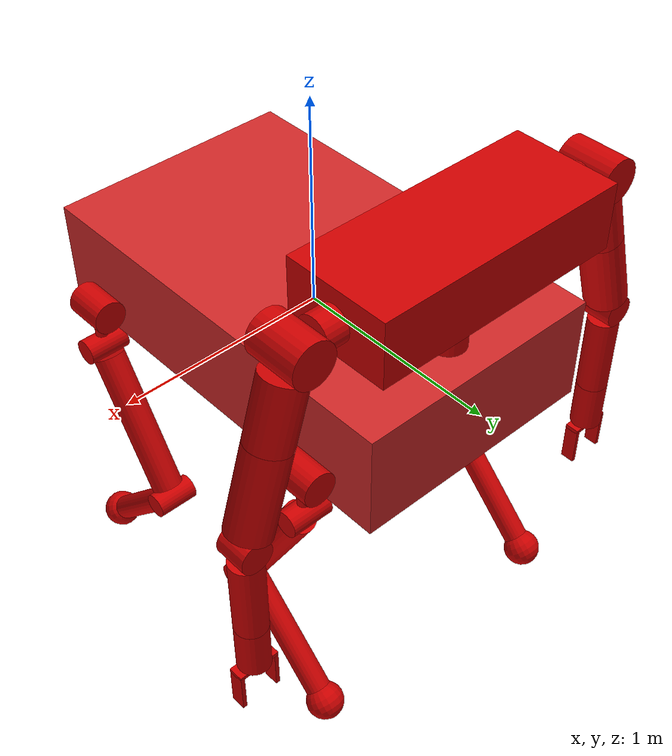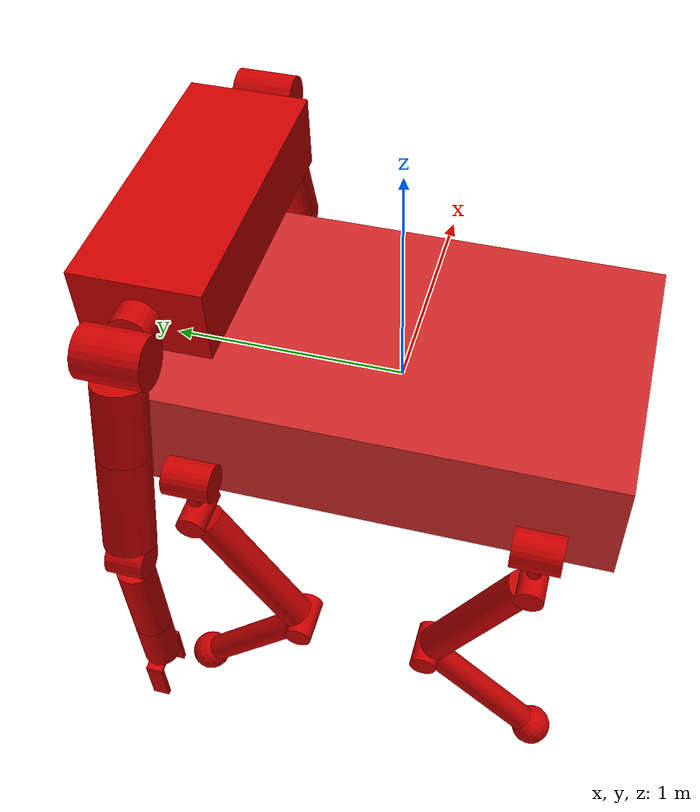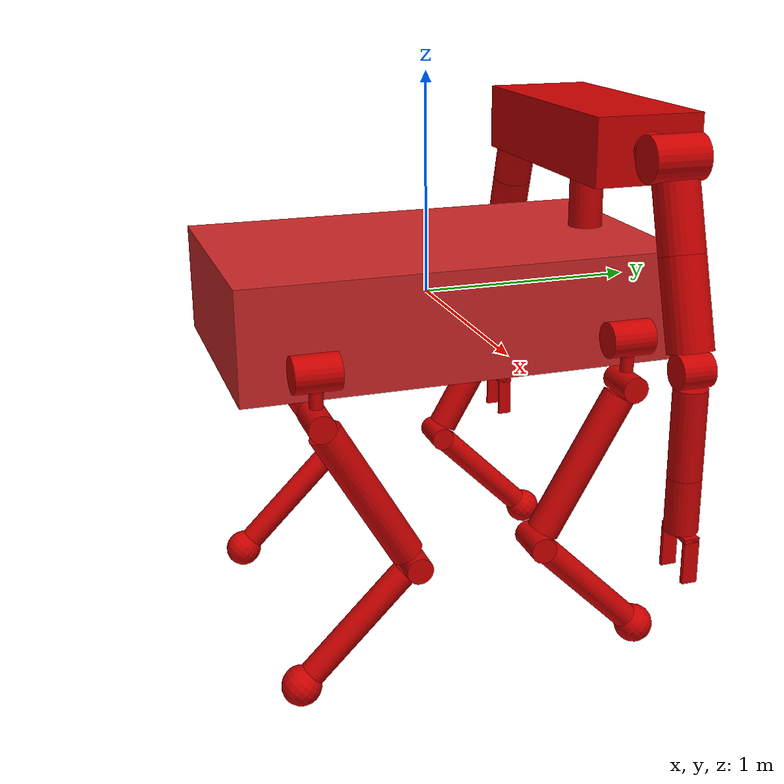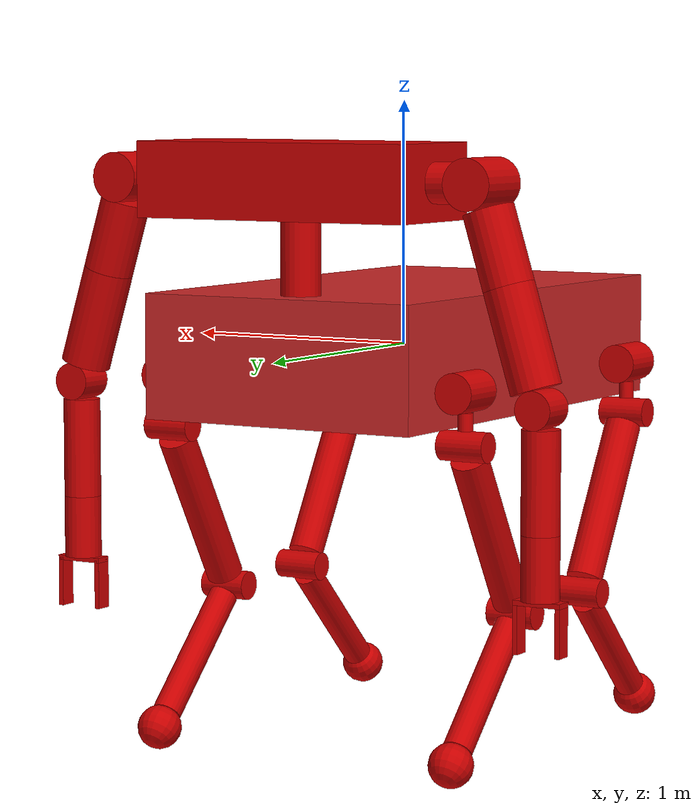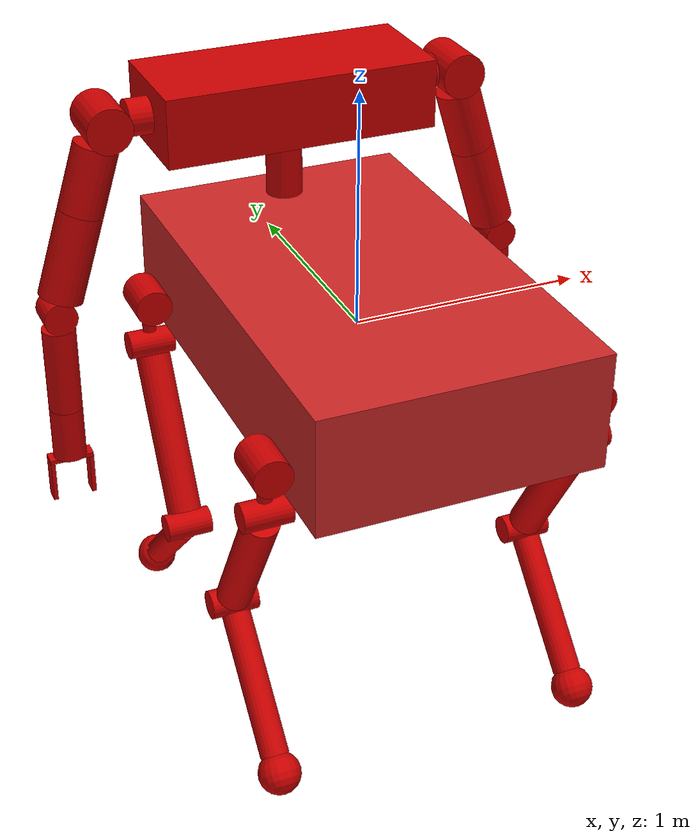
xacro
<?xml version="1.0"?>

<robot name="quadruped" xmlns:xacro="http://ros.org/wiki/xacro">

	<!-- This argument allows us to load joint sensors that measure the internal wrenches -->
	<xacro:arg name="load_force_sensors" default="false"/>

	<!-- The following included files set up definitions of parts of the robot body -->
	<xacro:include filename="$(find quadruped_description)/urdfs/common.xacro"/>
	<!-- quadruped trunk -->
	<xacro:include filename="$(find quadruped_description)/urdfs/trunk/trunk_model.urdf.xacro"/>
	<!-- quadruped legs -->
	<xacro:include filename="$(find quadruped_description)/urdfs/leg/leg.urdf.xacro"/>
	<!-- quadruped torso -->
	<xacro:include filename="$(find quadruped_description)/urdfs/torso/torso.urdf.xacro"/>
	<!-- quadruped arm -->
	<xacro:include filename="$(find quadruped_description)/urdfs/arm/arm.urdf.xacro"/>

	<!-- Now we can start using the macros included above to define the actual HyQ -->

	<!-- body -->
	<!-- trunk -->
	<xacro:quad_trunk>
		<!--origin xyz="-0.443 -0.191 -0.276" rpy="0 0 0"/-->
	</xacro:quad_trunk>

	<!-- legs -->
	<xacro:leg prefix="forward_right" reflect_lateral="1" reflect_fb="1" left_right="1" front_back="1" load_force_sensors="$(arg load_force_sensors)">       <!-- forward right leg   -->
  </xacro:leg>
	<xacro:leg prefix="forward_left" reflect_lateral="-1" reflect_fb="1" left_right="0" front_back="1" load_force_sensors="$(arg load_force_sensors)">     <!--  forward left leg  -->
  </xacro:leg>
	<xacro:leg prefix="backward_right" reflect_lateral="1" reflect_fb="-1" left_right="1" front_back="-1" load_force_sensors="$(arg load_force_sensors)">     <!-- backward right leg  -->
  </xacro:leg>
	<xacro:leg prefix="backward_left" reflect_lateral="-1" reflect_fb="-1" left_right="0" front_back="-1" load_force_sensors="$(arg load_force_sensors)">   <!--  backward left leg -->
  </xacro:leg>

	<!-- torso -->
	<xacro:quad_torso>
	</xacro:quad_torso>

	<!-- arm -->
	<xacro:arm prefix="left" reflect="-1">
	</xacro:arm>
  <xacro:arm prefix="right" reflect="1">
	</xacro:arm>

</robot>

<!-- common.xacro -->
<robot xmlns:xacro="http://ros.org/wiki/xacro">

<xacro:property name="deg_to_rad" value="0.01745329251994329577"/>

<!-- Colour -->
<material name="black">
    <color rgba="0.0 0.0 0.0 1.0"/>
</material>
<material name="red">
    <color rgba="0.8 0.0 0.0 1.0"/>
</material>
<material name="white">
    <color rgba="1.0 1.0 1.0 1.0"/>
</material>

<!-- Constants -->
<xacro:property name="M_SCALE" value="0.001 0.001 0.001"/>
<xacro:property name="PI" value="3.14159265359"/>
<xacro:property name="PI_2" value="1.57079632679"/>
<xacro:property name="joint_limit_effort" value="300"/>
<xacro:property name="joint_velocity" value="0.1"/>

<!--/////////////////////Lower body parameters/////////////////////////////-->
<!-- pelvis -->
<xacro:property name="pelvis_l" value="2.0"/> <!-- pelvis length-->
<xacro:property name="pelvis_w" value="1.2"/> <!-- pelvis width-->
<xacro:property name="pelvis_h" value="0.5"/> <!-- pelvis height-->

<!-- thigh_roll_cylinder -->
<xacro:property name="thigh_r_l" value="0.2"/> <!-- length of the cylinder-->
<xacro:property name="thigh_r_r" value="0.08"/> <!-- radius of the cylinder-->

<!-- thigh_bwn_cylinder -->
<xacro:property name="thigh_bwn_l" value="0.07"/> <!-- length of the cylinder-->
<xacro:property name="thigh_bwn_r" value="0.03"/> <!-- radius of the cylinder-->

<!-- thigh_pitch_cylinder -->
<xacro:property name="thigh_p_l" value="0.2"/> <!-- length of the cylinder-->
<xacro:property name="thigh_p_r" value="0.06"/> <!-- radius of the cylinder-->

<!--- upper_leg (cylinder)-->
<xacro:property name="upper_leg_l" value="0.7"/> <!--length of the leg above the knee-->
<xacro:property name="upper_leg_r" value="0.075"/> <!--radius of the leg above the knee-->

<!-- knee (cylinder) -->
<xacro:property name="knee_l" value="0.2"/> <!-- knee cylinder length-->
<xacro:property name="knee_r" value="0.06"/> <!-- knee cylinder radius-->

<!-- lower leg (cylinder)-->
<xacro:property name="lower_leg_l" value="0.6"/> <!-- length below knee -->
<xacro:property name="lower_leg_r" value="0.06"/> <!-- radius below the knee -->

<!-- sole_sphere -->
<xacro:property name="sole_r" value="0.09"/>

<!-- lower kinematics -->
<xacro:property name="thigh_roll_min" value="15"/>
<xacro:property name="thigh_roll_max" value="60"/>
<xacro:property name="thigh_pitch_min" value="-60"/>
<xacro:property name="thigh_pitch_max" value="60"/>
<xacro:property name="knee_pitch_min" value="40"/>
<xacro:property name="knee_pitch_max" value="150"/>

<!-- cylinder of the lower limbs-->
<xacro:property name="cylinder_h" value="0.06"/>
<xacro:property name="cylinder_r" value="0.02"/>
<xacro:property name="cylinder_m" value="0.1"/>

<!-- foot -->
<xacro:property name="foot_m" value="0.1"/>
<xacro:property name="foot_r" value="0.02"/>

<!-- //////////////////////////Upper body parameters///////////////////////-->

<!-- Spine_cylinder-->
<xacro:property name="spine_r" value="0.08"/>
<xacro:property name="spine_l" value="0.3"/>

<!-- Shoulder  -->
<xacro:property name="shoulder_l" value="0.5"/>              <!-- the lenght width and height of the shoulder are taken wrt the entire robot and not the shoulder box -->
<xacro:property name="shoulder_w" value="1.2"/>
<xacro:property name="shoulder_h" value="0.3"/>

<!-- shoulder_pitch_cylinder -->
<xacro:property name="shoulder_pitch_r" value="0.08"/>
<xacro:property name="shoulder_pitch_l" value="0.1"/>

<!-- shoulder_roll_cylinder -->
<xacro:property name="shoulder_roll_r" value="0.1"/>
<xacro:property name="shoulder_roll_l" value="0.25"/>

<!-- shoulder_bwn_link -->
<xacro:property name="shoulder_bwn_r" value="0.1"/>
<xacro:property name="shoulder_bwn_l" value="0.3"/>

<!-- shoulder_yaw_cylinder -->
<xacro:property name="shoulder_yaw_r" value="0.1"/>
<xacro:property name="shoulder_yaw_l" value="0.4"/>

<!-- elbow -->
<xacro:property name="elbow_r" value="0.075"/>
<xacro:property name="elbow_l" value="0.15"/>

<!-- forearm -->
<xacro:property name="forearm_r" value="0.075"/>
<xacro:property name="forearm_l" value="0.4"/>

<!-- wrist -->
<xacro:property name="wrist_r" value="0.075"/>
<xacro:property name="wrist_l" value="0.25"/>

</robot>

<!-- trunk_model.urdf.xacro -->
<robot xmlns:xacro="http://ros.org/wiki/xacro">

	<!-- Things that are needed only for Gazebo (not the physical robot). These include sensor and controller plugin specifications -->
	<xacro:include filename="$(find quadruped_description)/urdfs/trunk/trunk.gazebo.xacro"/>

	<!-- ================================ Trunk ================================ -->
	<!-- The xacro macro xacro:hyq_base contains: base and trunk -->
	<xacro:macro name="quad_trunk">
		<!-- Floating-base Joint -->
		<joint name="base_footprint_joint" type="floating">
        <origin xyz="0 0 0" rpy="0 0 0" />
        <parent link="base_footprint"/>
        <child link="pelvis" />
      </joint>

		<!-- Links -->
		<!-- Footprint link -->
   <link name="base_footprint">
      <visual>
          <origin xyz="0 0 0" rpy="0 0 0" />
          <geometry>
              <box size="0.001 0.001 0.001" />
          </geometry>
      </visual>
    </link>
		<!-- Trunk link -->
		<link name="pelvis">
			<inertial>
				<mass value="60.96" />
				<origin xyz="0.056 0.0215 0.00358" />
				<inertia ixx="1.572" ixy="0.028" ixz="-0.203"
						iyy="8.502" iyz="-0.004"
						izz="9.195" />
			</inertial>
			<visual>
				<geometry>
					<box size="${pelvis_w} ${pelvis_l} ${pelvis_h}"/>
				</geometry>
				<origin xyz="0 0 0" rpy="0 0 0"/>
				<material name="Red"/>
			</visual>
			<collision>
				<geometry>
					<box size="${pelvis_w} ${pelvis_l} ${pelvis_h}"/>
				</geometry>
			</collision>
		</link>

		<!-- Extensions -->
		<xacro:trunk_gazebo />
	</xacro:macro>

</robot>

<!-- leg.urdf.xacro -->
<robot xmlns:xacro="http://ros.org/wiki/xacro">

	<!-- Things that are needed only for Gazebo (not the physical robot). These include sensor and controller plugin specifications -->
	<xacro:include filename="$(find quadruped_description)/urdfs/leg/leg.transmission.xacro"/>
	<xacro:include filename="$(find quadruped_description)/urdfs/leg/leg.gazebo.xacro"/>

<!-- ================================== Leg ================================== -->
   <xacro:macro name="leg" params="prefix reflect_lateral reflect_fb left_right front_back load_force_sensors">
   <!--Joints-->
   <!-- joint between the thigh_roll_cylinder and pelvic -->
    <joint name="${prefix}_thigh_roll_joint" type="revolute">
      <origin xyz="${reflect_lateral*(pelvis_w/2+thigh_r_r)} ${reflect_fb*(pelvis_l/2-0.3)} -0.1"/>    <!-- 0.3 and 0.1 are the offset provided for the thigh_roll_cylinder from the front and centerline below-->
      <parent link ="pelvis"/>
      <child link="${prefix}_thigh_roll_cylinder"/>
      <axis xyz="0 1 0"/>
      <limit effort="${joint_limit_effort}" velocity="${joint_velocity}"
      lower="${-(1-left_right)*thigh_roll_min*PI/180-left_right*thigh_roll_max*PI/180}"
      upper="${(1-left_right)*thigh_roll_max*PI/180+left_right*thigh_roll_min*PI/180}"/>
      <dynamics damping="0.1" friction="0" />
    </joint>
    <!-- fixed joint between the thigh_roll_cylinder and thigh_bwn_cylinder -->
    <joint name="${prefix}_thigh_bwn_joint" type="fixed">
      <origin xyz="0 0 -${thigh_r_r+thigh_bwn_l/2}"/>
      <parent link="${prefix}_thigh_roll_cylinder"/>
      <child link="${prefix}_thigh_bwn_cylinder"/>
    </joint>
    <!-- the joint which allows the pitch motion of the thigh -->
    <joint name="${prefix}_thigh_pitch_joint" type="revolute">
      <origin xyz="0 0 -${thigh_p_r+thigh_bwn_l/2}" rpy="${-30*front_back*deg_to_rad} 0 0"/>
      <parent link="${prefix}_thigh_bwn_cylinder"/>
      <child link="${prefix}_thigh_pitch_cylinder"/>
      <axis xyz="1 0 0"/>
      <limit effort="${joint_limit_effort}" velocity="${joint_velocity}" lower="${thigh_pitch_min*PI/180}" upper="${thigh_pitch_max*PI/180}"/>
      <dynamics damping="0.1" friction="0" />
    </joint>
    <!-- the permanent joint connecting upper leg and the thigh_pitch_cylinder -->
    <joint name="${prefix}_leg_thigh_joint" type="fixed">
      <origin xyz="0 0 -${thigh_p_r+upper_leg_l/2}"/>
      <parent link="${prefix}_thigh_pitch_cylinder"/>
      <child link="${prefix}_upper_leg"/>
    </joint>
    <!-- knee joint -->
    <joint name="${prefix}_knee_joint" type="revolute">
      <origin xyz="0 0 -${knee_r+upper_leg_l/2}" rpy="${75*front_back*deg_to_rad} 0 0"/>
      <parent link="${prefix}_upper_leg"/>
      <child link="${prefix}_knee_cylinder"/>
      <axis xyz="1 0 0"/>
      <limit effort="${joint_limit_effort}" velocity="${joint_velocity}" lower="${(-(1+front_back)/2*knee_pitch_max-(1-front_back)/2*knee_pitch_min)*PI/180}"
				         upper="${((1+front_back)/2*knee_pitch_min+(1-front_back)/2*knee_pitch_max)*PI/180}"/>
      <dynamics damping="0.1" friction="0" />
    </joint>
    <!-- the permanent joint connecting the knee cylinder with the lower leg -->
    <joint name="${prefix}_knee_fixed_joint" type="fixed">
      <origin xyz="0 0 -${knee_r+lower_leg_l/2}"/>
      <parent link="${prefix}_knee_cylinder"/>
      <child link="${prefix}_lower_leg"/>
    </joint>
    <!-- the permanent joint connecting the sole and lower_leg -->
    <joint name="${prefix}_sole_fixed_joint" type="fixed">
      <origin xyz="0 0 -${sole_r+lower_leg_l/2-0.02}"/>
      <parent link="${prefix}_lower_leg"/>
      <child link="${prefix}_sole_sphere"/>
    </joint>

    <!-- Links -->
    <!--- link which allows the lateral motion of the link -->
    <link name="${prefix}_thigh_roll_cylinder">
			<inertial>
	       <mass value="${cylinder_m}" />
				 <origin xyz="0 0 0"/>
	       <inertia ixx="${0.08333*cylinder_m*cylinder_h*cylinder_h+0.25*cylinder_m*cylinder_r*cylinder_r}" ixy="0" ixz="0"
	           iyy="${0.5*cylinder_m*cylinder_r*cylinder_r}" iyz="0"
	           izz="${0.08333*cylinder_m*cylinder_h*cylinder_h+0.25*cylinder_m*cylinder_r*cylinder_r}" />
	     </inertial>
      <visual>
        <geometry>
          <cylinder radius="${thigh_r_r}" length="${thigh_r_l}"/>
        </geometry>
        <origin xyz="0 0 0" rpy="${PI_2} 0 0"/>
        <material name="red"/>
      </visual>
      <collision>
				<origin xyz="0 0 0" rpy="${PI_2} 0 0"/>
        <geometry>
          <cylinder radius="${thigh_r_r}" length="${thigh_r_l}"/>
        </geometry>
      </collision>
    </link>
    <!--- the link which joints the thigh_roll_cylinder and thigh_pitch_cylinder -->
    <link name="${prefix}_thigh_bwn_cylinder">
			<inertial>
	       <mass value="${cylinder_m}" />
	       <origin xyz="0 0 0"/>
	       <inertia ixx="${0.08333*cylinder_m*cylinder_h*cylinder_h+0.25*cylinder_m*cylinder_r*cylinder_r}" ixy="0" ixz="0"
	           iyy="${0.08333*cylinder_m*cylinder_h*cylinder_h+0.25*cylinder_m*cylinder_r*cylinder_r}" iyz="0"
	           izz="${0.5*cylinder_m*cylinder_r*cylinder_r}" />
	     </inertial>
      <visual>
        <geometry>
          <cylinder radius="${thigh_bwn_r}" length="${thigh_bwn_l}"/>
        </geometry>
        <origin xyz="0 0 0"/>
        <material name="red"/>
      </visual>
      <collision>
        <geometry>
          <cylinder radius="${thigh_bwn_r}" length="${thigh_bwn_l}"/>
        </geometry>
      </collision>
    </link>
    <!-- the link(cylinder) which is attached to the upper_leg -->
    <link name="${prefix}_thigh_pitch_cylinder">
			<inertial>
	       <mass value="${cylinder_m}" />
	       <origin xyz="0 0 0"/>
	       <inertia ixx="${0.5*cylinder_m*cylinder_r*cylinder_r}" ixy="0" ixz="0"
	           iyy="${0.08333*cylinder_m*cylinder_h*cylinder_h+0.25*cylinder_m*cylinder_r*cylinder_r}" iyz="0"
	           izz="${0.08333*cylinder_m*cylinder_h*cylinder_h+0.25*cylinder_m*cylinder_r*cylinder_r}" />
	     </inertial>
      <visual>
        <geometry>
          <cylinder radius="${thigh_p_r}" length="${thigh_p_l}"/>
        </geometry>
        <origin xyz="0 0 0" rpy="0 ${PI_2} 0"/>
        <material name="red"/>
      </visual>
      <collision>
				<origin xyz="0 0 0" rpy="0 ${PI_2} 0"/>
        <geometry>
          <cylinder radius="${thigh_p_r}" length="${thigh_p_l}"/>
        </geometry>
      </collision>
    </link>
    <!-- the upper leg -->
    <link name="${prefix}_upper_leg">
    <inertial>
       <mass value="2.638" />
       <origin xyz="0.150 0.026 0.0" />
       <inertia ixx="0.0036" ixy="-0.003" ixz="0.0001"
           iyy="0.027" iyz="0.00002"
           izz="0.028" />
     </inertial>
      <visual>
        <geometry>
          <cylinder radius="${upper_leg_r}" length="${upper_leg_l}"/>
        </geometry>
        <origin xyz="0 0 0" rpy="0 0 0"/>
        <material name="red"/>
      </visual>
      <collision>
        <geometry>
          <cylinder radius="${upper_leg_r}" length="${upper_leg_l}"/>
        </geometry>
      </collision>
    </link>
    <!-- the link(cylinder) at the knee which connects the upper and lower leg -->
    <link name="${prefix}_knee_cylinder">
			<inertial>
	       <mass value="${cylinder_m}" />
	       <origin xyz="0 0 0"/>
	       <inertia ixx="${0.5*cylinder_m*cylinder_r*cylinder_r}" ixy="0" ixz="0"
	           iyy="${0.08333*cylinder_m*cylinder_h*cylinder_h+0.25*cylinder_m*cylinder_r*cylinder_r}" iyz="0"
	           izz="${0.08333*cylinder_m*cylinder_h*cylinder_h+0.25*cylinder_m*cylinder_r*cylinder_r}" />
	     </inertial>
      <visual>
        <geometry>
          <cylinder radius="${knee_r}" length="${knee_l}"/>
        </geometry>
        <origin xyz="0 0 0" rpy="0 ${PI_2} 0"/>
        <material name="red"/>
      </visual>
      <collision>
				<origin xyz="0 0 0" rpy="0 ${PI_2} 0"/>
        <geometry>
          <cylinder radius="${knee_r}" length="${knee_l}"/>
        </geometry>
      </collision>
    </link>
    <!-- lower leg -->
    <link name="${prefix}_lower_leg">
      <inertial>
       <mass value="0.881" />
       <origin xyz="0.125 0.00004 -0.0001" />
       <inertia ixx="0.0125" ixy="0.00006" ixz="-0.00001"
           iyy="0.01256" iyz="0"
           izz="0.0123" />
     </inertial>
      <visual>
        <geometry>
          <cylinder radius="${lower_leg_r}" length="${lower_leg_l}"/>
        </geometry>
        <origin xyz="0 0 0" rpy="0 0 0"/>
        <material name="red"/>
      </visual>
      <collision>
        <geometry>
          <cylinder radius="${lower_leg_r}" length="${lower_leg_l}"/>
        </geometry>
      </collision>
    </link>
    <!-- the sphere which acts as the sole of the robot -->
    <link name="${prefix}_sole_sphere">
			<inertial>
       <mass value="${foot_m}" />
       <origin xyz="0 0 0"/>
       <inertia ixx="${0.4*foot_m*foot_r*foot_r}" ixy="0" ixz="0"
           iyy="${0.4*foot_m*foot_r*foot_r}" iyz="0"
           izz="${0.4*foot_m*foot_r*foot_r}" />
     </inertial>
      <visual>
        <geometry>
          <sphere radius="${sole_r}"/>
        </geometry>
        <origin xyz="0 0 0" rpy="0 0 0"/>
        <material name="red"/>
      </visual>
      <collision>
        <geometry>
          <sphere radius="${sole_r}"/>
        </geometry>
      </collision>
    </link>

    <!-- Extensions -->
    <xacro:leg_transmission prefix="${prefix}"/>
    <xacro:leg_gazebo prefix="${prefix}" load_force_sensors="${load_force_sensors}"/>
  </xacro:macro>

</robot>

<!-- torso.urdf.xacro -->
<robot xmlns:xacro="http://ros.org/wiki/xacro">

	<!-- ================================ Torso ================================ -->
	<!-- The xacro macro xacro:hyq_base contains: base and trunk -->
	<xacro:macro name="quad_torso">
		<!-- Joints -->
		<joint name="pelvis_shoulder_fixed_joint" type="fixed">
			<origin xyz="0 ${pelvis_l/2-0.2} ${spine_l/2+pelvis_h/2}" />
			<parent link="pelvis"/>
			<child link="spine_cylinder"/>
		</joint>

		<joint name="shoulder_twist" type="fixed">
			<origin xyz="0 0 ${spine_l/2+shoulder_h/2}"/>
			<parent link="spine_cylinder"/>
			<child link="shoulder"/>
			<axis xyz="0 0 1"/>
			<limit effort="${joint_limit_effort}" velocity="${joint_velocity}" lower="-3.14" upper="3.14"/>
		</joint>

		<!-- Links -->
		<link name="spine_cylinder">
			<visual>
				<geometry>
					<cylinder radius="${spine_r}" length="${spine_l}"/>
				</geometry>
				<origin xyz="0 0 0"/>
				<material name="red"/>
			</visual>
			<collision>
				<geometry>
					<cylinder radius="${spine_r}" length="${spine_l}"/>
				</geometry>
			</collision>
		</link>

		<link name="shoulder">
			<visual>
				<geometry>
					<box size="${shoulder_w} ${shoulder_l} ${shoulder_h}"/>
				</geometry>
				<origin xyz="0 0 0"/>
				<material name="red"/>
			</visual>
			<collision>
				<geometry>
					<box size="${shoulder_w} ${shoulder_l} ${shoulder_h}"/>
				</geometry>
			</collision>
		</link>
	</xacro:macro>

</robot>

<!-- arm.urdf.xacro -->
<robot xmlns:xacro="http://ros.org/wiki/xacro">

	<!-- ================================ Arm ================================ -->
	<xacro:macro name="arm" params="prefix reflect">

  <!-- Joints -->
  <joint name="${prefix}_shoulder_pitch_joint" type="fixed">
    <origin xyz="${reflect*(shoulder_w/2+shoulder_pitch_l/2)} 0 0"/>
    <parent link="shoulder"/>
    <child link="${prefix}_shoulder_pitch_cylinder"/>
    <axis xyz="1 0 0"/>
    <limit effort="${joint_limit_effort}" velocity="${joint_velocity}" lower="-3.14" upper="3.14"/>
  </joint>

	<joint name="${prefix}_shoulder_roll_joint" type="fixed">
    <origin xyz="${reflect*(shoulder_roll_r+shoulder_pitch_l/2)} 0 0"  rpy="0 ${-reflect*0.3} 0"/>
    <parent link="${prefix}_shoulder_pitch_cylinder"/>
    <child link="${prefix}_shoulder_roll_cylinder"/>
    <axis xyz="0 1 0"/>
    <limit effort="${joint_limit_effort}" velocity="${joint_velocity}" lower="-3.14" upper="3.14"/>
  </joint>

	<joint name="${prefix}_shoulder_fixed_joint" type="fixed">
    <origin xyz="0 0 -${shoulder_roll_r+shoulder_bwn_l/2}"/>
    <parent link="${prefix}_shoulder_roll_cylinder"/>
    <child link="${prefix}_shoulder_bwn_cylinder"/>
  </joint>

	<joint name="${prefix}_shoulder_yaw_joint" type="fixed">
    <origin xyz="0 0 -${shoulder_bwn_l/2+shoulder_yaw_l/2}"/>
    <parent link="${prefix}_shoulder_bwn_cylinder"/>
    <child link="${prefix}_shoulder_yaw_cylinder"/>
    <axis xyz="0 0 1"/>
    <limit effort="${joint_limit_effort}" velocity="${joint_velocity}" lower="-3.14" upper="3.14"/>
  </joint>

	<joint name="${prefix}_elbow_joint" type="fixed">
    <origin xyz="0 0 -${elbow_r+shoulder_yaw_l/2}" rpy="0 ${reflect*0.3} 0"/>
    <parent link="${prefix}_shoulder_yaw_cylinder"/>
    <child link="${prefix}_elbow_cylinder"/>
    <axis xyz="0 1 0"/>
    <limit effort="${joint_limit_effort}" velocity="${joint_velocity}" lower="-3.14" upper="3.14"/>
  </joint>

	<joint name="${prefix}_forearm_fixed_joint" type="fixed">
    <origin xyz="0 0 -${elbow_r+forearm_l/2}" />
    <parent link="${prefix}_elbow_cylinder"/>
    <child link="${prefix}_forearm_cylinder"/>
  </joint>

	<joint name="${prefix}_wrist_joint" type="fixed">
    <origin xyz="0 0 -${forearm_l/2+wrist_l/2}"/>
    <parent link="${prefix}_forearm_cylinder"/>
    <child link="${prefix}_wrist_cylinder"/>
    <axis xyz="0 0 1"/>
    <limit effort="${joint_limit_effort}" velocity="${joint_velocity}" lower="-3.14" upper="3.14"/>
  </joint>

	<joint name="${prefix}_gripper_fixed_joint" type="fixed">
    <origin xyz="0 0 -${wrist_l/2+0.01}"/>
    <parent link="${prefix}_wrist_cylinder"/>
    <child link="${prefix}_gripper_fixed_link"/>
  </joint>

	<joint name="${prefix}_finger_joint1" type="fixed">
      <parent link="${prefix}_gripper_fixed_link"/>
      <child link="${prefix}_gripper_finger_link1"/>
      <origin xyz="0.0 0 0" />
      <axis xyz="1 0 0" />
      <limit effort="1" lower="-0.09" upper="0" velocity="1.0"/>
  </joint>

	<joint name="${prefix}_finger_joint2" type="fixed">
      <parent link="${prefix}_gripper_fixed_link"/>
      <child link="${prefix}_gripper_finger_link2"/>
      <origin xyz="0.0 0 0" />
      <axis xyz="1 0 0" />
      <limit effort="1" lower="0" upper="0.09" velocity="1.0"/>
  </joint>

  <!-- Links -->
  <link name="${prefix}_shoulder_pitch_cylinder">
    <visual>
      <geometry>
        <cylinder radius="${shoulder_pitch_r}" length="${shoulder_pitch_l}"/>
      </geometry>
      <origin xyz="0 0 0" rpy="0 ${PI_2} 0"/>
      <material name="red"/>
    </visual>
    <collision>
			<origin xyz="0 0 0" rpy="0 ${PI_2} 0"/>
      <geometry>
        <cylinder radius="${shoulder_pitch_r}" length="${shoulder_pitch_l}"/>
      </geometry>
    </collision>
  </link>

  <link name="${prefix}_shoulder_roll_cylinder">
    <visual>
      <geometry>
        <cylinder radius="${shoulder_roll_r}" length="${shoulder_roll_l}"/>
      </geometry>
      <origin xyz="0 0 0" rpy="${PI_2} 0 0"/>
      <material name="red"/>
    </visual>
    <collision>
			<origin xyz="0 0 0" rpy="${PI_2} 0 0"/>
      <geometry>
        <cylinder radius="${shoulder_roll_r}" length="${shoulder_roll_l}"/>
      </geometry>
    </collision>
  </link>

  <link name="${prefix}_shoulder_bwn_cylinder">
    <visual>
      <geometry>
        <cylinder radius="${shoulder_bwn_r}" length="${shoulder_bwn_l}"/>
      </geometry>
      <origin xyz="0 0 0"/>
      <material name="red"/>
    </visual>
    <collision>
      <geometry>
        <cylinder radius="${shoulder_bwn_r}" length="${shoulder_bwn_l}"/>
      </geometry>
    </collision>
  </link>

  <link name="${prefix}_shoulder_yaw_cylinder">
    <visual>
      <geometry>
        <cylinder radius="${shoulder_yaw_r}" length="${shoulder_yaw_l}"/>
      </geometry>
      <origin xyz="0 0 0"/>
      <material name="red"/>
    </visual>
    <collision>
      <geometry>
        <cylinder radius="${shoulder_yaw_r}" length="${shoulder_yaw_l}"/>
      </geometry>
    </collision>
  </link>

  <link name="${prefix}_elbow_cylinder">
    <visual>
      <geometry>
        <cylinder radius="${elbow_r}" length="${elbow_l}"/>
      </geometry>
      <origin xyz="0 0 0" rpy="${PI_2} 0 0"/>
      <material name="red"/>
    </visual>
    <collision>
			<origin xyz="0 0 0" rpy="${PI_2} 0 0"/>
      <geometry>
        <cylinder radius="${elbow_r}" length="${elbow_l}"/>
      </geometry>
    </collision>
  </link>

  <link name="${prefix}_forearm_cylinder">
    <visual>
      <geometry>
        <cylinder radius="${forearm_r}" length="${forearm_l}"/>
      </geometry>
      <origin xyz="0 0 0"/>
      <material name="red"/>
    </visual>
    <collision>
      <geometry>
        <cylinder radius="${forearm_r}" length="${forearm_l}"/>
      </geometry>
    </collision>
  </link>

  <link name="${prefix}_wrist_cylinder">
    <visual>
      <geometry>
        <cylinder radius="${wrist_r}" length="${wrist_l}"/>
      </geometry>
      <origin xyz="0 0 0"/>
      <material name="red"/>
    </visual>
    <collision>
      <geometry>
        <cylinder radius="${wrist_r}" length="${wrist_l}"/>
      </geometry>
    </collision>
  </link>

  <link name="${prefix}_gripper_fixed_link">
    <visual>
      <geometry>
        <box size="0.2 0.07 0.02"/>
      </geometry>
      <origin xyz="0 0 0"/>
      <material name="red"/>
    </visual>
    <collision>
      <geometry>
        <box size="0.2 0.07 0.02"/>
      </geometry>
    </collision>
  </link>

  <link name="${prefix}_gripper_finger_link1">
    <visual>
      <geometry>
        <box size="0.02 0.07 0.2"/>
      </geometry>
      <origin xyz="0.09 0 -0.1" />
      <material name="red"/>
    </visual>
    <collision>
			<origin xyz="0.09 0 -0.1" />
      <geometry>
        <box size="0.02 0.07 0.2"/>
      </geometry>
    </collision>
  </link>

  <link name="${prefix}_gripper_finger_link2">
    <visual>
      <geometry>
        <box size="0.02 0.07 0.2"/>
      </geometry>
      <origin xyz="-0.09 0 -0.1"/>
      <material name="red"/>
    </visual>
    <collision>
			<origin xyz="-0.09 0 -0.1"/>
      <geometry>
        <box size="0.02 0.07 0.2"/>
      </geometry>
    </collision>
  </link>

  </xacro:macro>

</robot>
